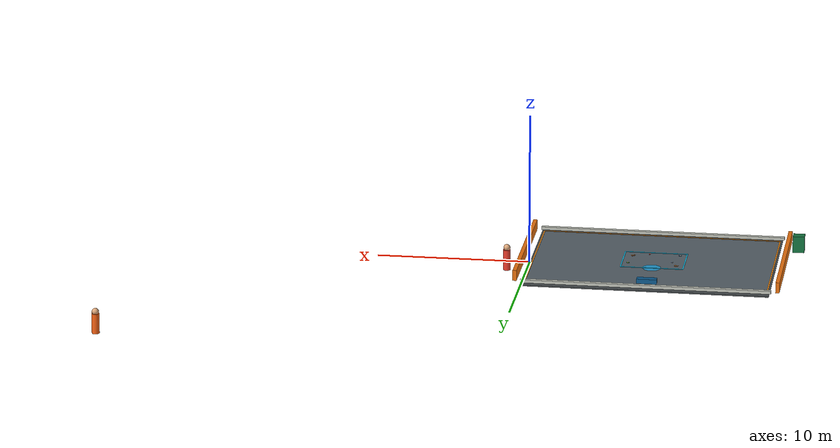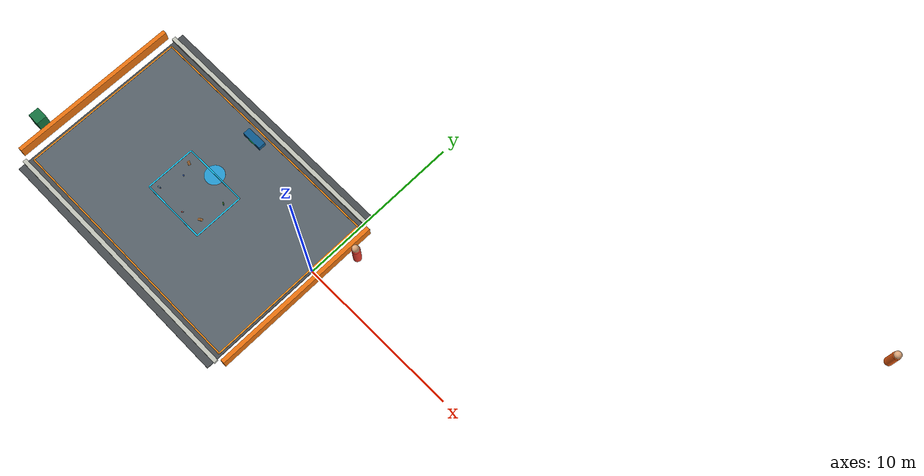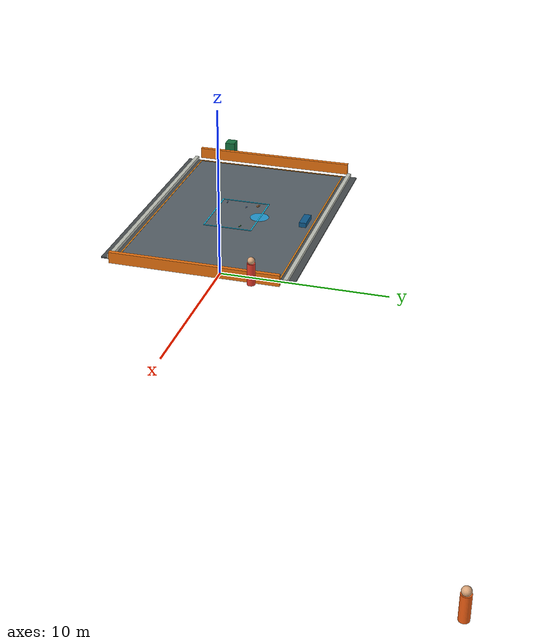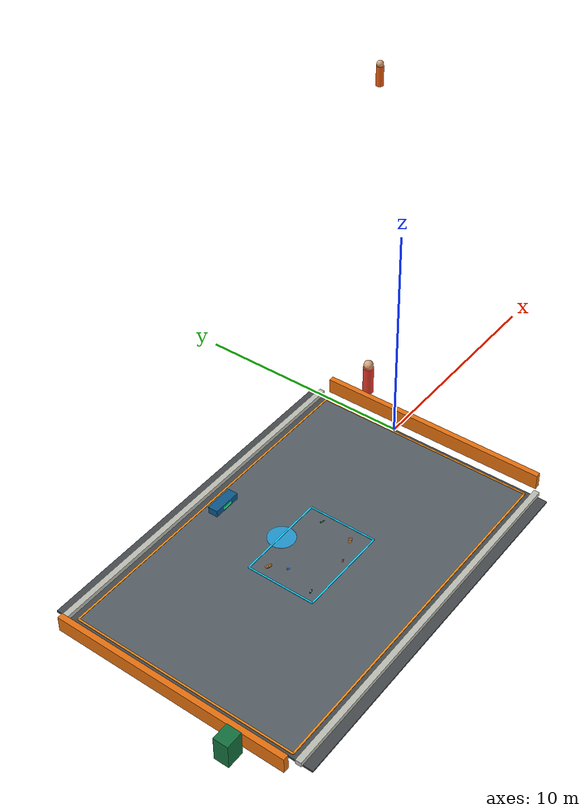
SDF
<sdf version="1.9">
 <world name="sanitation_competition_ackermann_demo">
  <plugin filename="gz-sim-physics-system" name="gz::sim::systems::Physics"/>
  <plugin filename="gz-sim-user-commands-system" name="gz::sim::systems::UserCommands"/>
  <plugin filename="gz-sim-scene-broadcaster-system" name="gz::sim::systems::SceneBroadcaster"/>
  <plugin filename="gz-sim-sensors-system" name="gz::sim::systems::Sensors">
   <render_engine>ogre2</render_engine>
  </plugin>
  <plugin filename="gz-sim-navsat-system" name="gz::sim::systems::NavSat"/>
  <spherical_coordinates>
   <surface_model>EARTH_WGS84</surface_model>
   <world_frame_orientation>ENU</world_frame_orientation>
   <latitude_deg>31.2304</latitude_deg>
   <longitude_deg>121.4737</longitude_deg>
   <elevation>0</elevation>
   <heading_deg>0</heading_deg>
  </spherical_coordinates>
  <gravity>0 0 -9.81</gravity>
  <physics name="developer_fast_2x" type="ignored">
   <max_step_size>0.005</max_step_size>
   <real_time_factor>2.0</real_time_factor>
  </physics>
  <scene>
   <ambient>0.68 0.70 0.72 1</ambient>
   <background>0.58 0.76 0.91 1</background>
   <shadows>true</shadows>
   <grid>false</grid>
  </scene>
  <light type="directional" name="sun">
   <pose>-4 -6 20 0 0 0</pose>
   <diffuse>0.98 0.94 0.84 1</diffuse>
   <direction>-0.35 0.25 -1</direction>
  </light>
  <model name="demo_arena_floor">
   <static>true</static>
   <pose>-8 -1.5 -0.04 0 0 0</pose>
   <link name="link">
    <collision name="collision"><geometry><box><size>16 12 0.08</size></box></geometry></collision>
    <visual name="visual">
     <geometry><box><size>16 12 0.08</size></box></geometry>
     <material><ambient>0.22 0.25 0.27 1</ambient><diffuse>0.28 0.30 0.31 1</diffuse></material>
    </visual>
   </link>
  </model>
  <model name="cleaning_lane_surface">
   <static>true</static>
   <pose>-8 -1.5 0.008 0 0 0</pose>
   <link name="link">
    <visual name="visual">
     <geometry><box><size>15.6 10.0 0.012</size></box></geometry>
     <material><ambient>0.34 0.38 0.41 1</ambient><diffuse>0.34 0.38 0.41 1</diffuse></material>
    </visual>
   </link>
  </model>
  <model name="cleaning_boundary_north">
   <static>true</static>
   <pose>-8 3.54 0.02 0 0 0</pose>
   <link name="link">
    <visual name="v">
     <geometry><box><size>15.7 0.08 0.02</size></box></geometry>
     <material><ambient>0.96 0.55 0.08 1</ambient><diffuse>0.96 0.55 0.08 1</diffuse></material>
    </visual>
   </link>
  </model>
  <model name="cleaning_boundary_south">
   <static>true</static>
   <pose>-8 -6.54 0.02 0 0 0</pose>
   <link name="link">
    <visual name="v">
     <geometry><box><size>15.7 0.08 0.02</size></box></geometry>
     <material><ambient>0.96 0.55 0.08 1</ambient><diffuse>0.96 0.55 0.08 1</diffuse></material>
    </visual>
   </link>
  </model>
  <model name="cleaning_boundary_west">
   <static>true</static>
   <pose>-15.84 -1.50 0.02 0 0 0</pose>
   <link name="link">
    <visual name="v">
     <geometry><box><size>0.08 10.1 0.02</size></box></geometry>
     <material><ambient>0.96 0.55 0.08 1</ambient><diffuse>0.96 0.55 0.08 1</diffuse></material>
    </visual>
   </link>
  </model>
  <model name="cleaning_boundary_east">
   <static>true</static>
   <pose>-0.16 -1.50 0.02 0 0 0</pose>
   <link name="link">
    <visual name="v">
     <geometry><box><size>0.08 10.1 0.02</size></box></geometry>
     <material><ambient>0.96 0.55 0.08 1</ambient><diffuse>0.96 0.55 0.08 1</diffuse></material>
    </visual>
   </link>
  </model>
  <model name="actual_cleaning_boundary_north">
   <static>true</static>
   <pose>-8 0.04 0.025 0 0 0</pose>
   <link name="link">
    <visual name="v">
     <geometry><box><size>4.1 0.07 0.025</size></box></geometry>
     <material><ambient>0.08 0.82 1 1</ambient><diffuse>0.08 0.82 1 1</diffuse></material>
    </visual>
   </link>
  </model>
  <model name="actual_cleaning_boundary_south">
   <static>true</static>
   <pose>-8 -3.04 0.025 0 0 0</pose>
   <link name="link">
    <visual name="v">
     <geometry><box><size>4.1 0.07 0.025</size></box></geometry>
     <material><ambient>0.08 0.82 1 1</ambient><diffuse>0.08 0.82 1 1</diffuse></material>
    </visual>
   </link>
  </model>
  <model name="actual_cleaning_boundary_west">
   <static>true</static>
   <pose>-10.04 -1.5 0.025 0 0 0</pose>
   <link name="link">
    <visual name="v">
     <geometry><box><size>0.07 3.1 0.025</size></box></geometry>
     <material><ambient>0.08 0.82 1 1</ambient><diffuse>0.08 0.82 1 1</diffuse></material>
    </visual>
   </link>
  </model>
  <model name="actual_cleaning_boundary_east">
   <static>true</static>
   <pose>-5.96 -1.5 0.025 0 0 0</pose>
   <link name="link">
    <visual name="v">
     <geometry><box><size>0.07 3.1 0.025</size></box></geometry>
     <material><ambient>0.08 0.82 1 1</ambient><diffuse>0.08 0.82 1 1</diffuse></material>
    </visual>
   </link>
  </model>
  <model name="home_dock">
   <static>true</static>
   <pose>-8 3.00 0.16 0 0 0</pose>
   <link name="link">
    <collision name="collision"><geometry><box><size>1.3 0.45 0.32</size></box></geometry></collision>
    <visual name="body">
     <geometry><box><size>1.3 0.45 0.32</size></box></geometry>
     <material><ambient>0.05 0.24 0.39 1</ambient><diffuse>0.05 0.35 0.55 1</diffuse></material>
    </visual>
    <visual name="charge">
     <pose>0 -0.235 0 0 0 0</pose>
     <geometry><box><size>0.5 0.02 0.15</size></box></geometry>
     <material><ambient>0.1 1 0.55 1</ambient><diffuse>0.1 1 0.55 1</diffuse></material>
    </visual>
   </link>
  </model>
  <model name="start_zone">
   <static>true</static>
   <pose>-8 0 0.018 0 0 0</pose>
   <link name="link">
    <visual name="v">
     <geometry><cylinder><radius>0.6</radius><length>0.015</length></cylinder></geometry>
     <material><ambient>0.12 0.72 1 0.75</ambient><diffuse>0.12 0.72 1 0.75</diffuse></material>
    </visual>
   </link>
  </model>
  <model name="curb_north">
   <static>true</static>
   <pose>-8 3.95 0.10 0 0 0</pose>
   <link name="link">
    <collision name="c"><geometry><box><size>16.2 0.25 0.20</size></box></geometry></collision>
    <visual name="v">
     <geometry><box><size>16.2 0.25 0.20</size></box></geometry>
     <material><ambient>0.75 0.76 0.72 1</ambient><diffuse>0.75 0.76 0.72 1</diffuse></material>
    </visual>
   </link>
  </model>
  <model name="curb_south">
   <static>true</static>
   <pose>-8 -6.95 0.10 0 0 0</pose>
   <link name="link">
    <collision name="c"><geometry><box><size>16.2 0.25 0.20</size></box></geometry></collision>
    <visual name="v">
     <geometry><box><size>16.2 0.25 0.20</size></box></geometry>
     <material><ambient>0.75 0.76 0.72 1</ambient><diffuse>0.75 0.76 0.72 1</diffuse></material>
    </visual>
   </link>
  </model>
  <model name="safety_barrier_west">
   <static>true</static>
   <pose>-16.5 -1.5 0.35 0 0 0</pose>
   <link name="link">
    <collision name="c"><geometry><box><size>0.25 10.5 0.7</size></box></geometry></collision>
    <visual name="v">
     <geometry><box><size>0.25 10.5 0.7</size></box></geometry>
     <material><ambient>0.92 0.45 0.06 1</ambient><diffuse>0.92 0.45 0.06 1</diffuse></material>
    </visual>
   </link>
  </model>
  <model name="safety_barrier_east">
   <static>true</static>
   <pose>0.5 -1.5 0.35 0 0 0</pose>
   <link name="link">
    <collision name="c"><geometry><box><size>0.25 10.5 0.7</size></box></geometry></collision>
    <visual name="v">
     <geometry><box><size>0.25 10.5 0.7</size></box></geometry>
     <material><ambient>0.92 0.45 0.06 1</ambient><diffuse>0.92 0.45 0.06 1</diffuse></material>
    </visual>
   </link>
  </model>
  <model name="competition_bin">
   <static>true</static>
   <pose>-17.2 -4.8 0.55 0 0 0</pose>
   <link name="link">
    <collision name="c"><geometry><box><size>0.75 0.65 1.1</size></box></geometry></collision>
    <visual name="v">
     <geometry><box><size>0.75 0.65 1.1</size></box></geometry>
     <material><ambient>0.08 0.45 0.25 1</ambient><diffuse>0.08 0.45 0.25 1</diffuse></material>
    </visual>
   </link>
  </model>
  <model name="pedestrian_dummy">
   <static>true</static>
   <pose>1.2 2.25 0 0 0 0</pose>
   <link name="link">
    <collision name="c">
     <pose>0 0 0.9 0 0 0</pose>
     <geometry><cylinder><radius>0.25</radius><length>1.8</length></cylinder></geometry>
    </collision>
    <visual name="body">
     <pose>0 0 0.9 0 0 0</pose>
     <geometry><cylinder><radius>0.24</radius><length>1.35</length></cylinder></geometry>
     <material><ambient>0.92 0.24 0.18 1</ambient><diffuse>0.92 0.24 0.18 1</diffuse></material>
    </visual>
    <visual name="head">
     <pose>0 0 1.72 0 0 0</pose>
     <geometry><sphere><radius>0.22</radius></sphere></geometry>
     <material><ambient>0.86 0.65 0.48 1</ambient><diffuse>0.86 0.65 0.48 1</diffuse></material>
    </visual>
   </link>
  </model>
  <model name="dynamic_pedestrian_box">
   <static>false</static>
   <pose>25 18 0 0 0 0</pose>
   <link name="link">
    <gravity>false</gravity>
    <kinematic>true</kinematic>
    <collision name="collision">
     <pose>0 0 0.85 0 0 0</pose>
     <geometry><cylinder><radius>0.25</radius><length>1.70</length></cylinder></geometry>
    </collision>
    <visual name="body">
     <pose>0 0 0.85 0 0 0</pose>
     <geometry><cylinder><radius>0.24</radius><length>1.30</length></cylinder></geometry>
     <material><ambient>0.96 0.38 0.08 1</ambient><diffuse>0.96 0.38 0.08 1</diffuse></material>
    </visual>
    <visual name="head">
     <pose>0 0 1.62 0 0 0</pose>
     <geometry><sphere><radius>0.22</radius></sphere></geometry>
     <material><ambient>0.86 0.65 0.48 1</ambient><diffuse>0.86 0.65 0.48 1</diffuse></material>
    </visual>
   </link>
  </model>
  <model name="target_bottle_demo">
   <static>true</static>
   <pose>-9.60 -2.65 0.035 0 1.57 0.2</pose>
   <link name="link">
    <visual name="body">
     <pose>0 0 -0.025 0 0 0</pose>
     <geometry><cylinder><radius>0.033</radius><length>0.145</length></cylinder></geometry>
     <material><ambient>0.05 0.52 0.86 0.72</ambient><diffuse>0.05 0.52 0.86 0.72</diffuse></material>
    </visual>
    <visual name="base_ring">
     <pose>0 0 -0.1005 0 0 0</pose>
     <geometry><cylinder><radius>0.034</radius><length>0.006</length></cylinder></geometry>
     <material><ambient>0.04 0.40 0.68 0.82</ambient><diffuse>0.04 0.40 0.68 0.82</diffuse></material>
    </visual>
    <visual name="label">
     <pose>0 0 -0.020 0 0 0</pose>
     <geometry><cylinder><radius>0.034</radius><length>0.045</length></cylinder></geometry>
     <material><ambient>0.92 0.92 0.85 0.95</ambient><diffuse>0.92 0.92 0.85 0.95</diffuse></material>
    </visual>
    <visual name="shoulder">
     <pose>0 0 0.056 0 0 0</pose>
     <geometry><cylinder><radius>0.027</radius><length>0.022</length></cylinder></geometry>
     <material><ambient>0.05 0.52 0.86 0.72</ambient><diffuse>0.05 0.52 0.86 0.72</diffuse></material>
    </visual>
    <visual name="neck">
     <pose>0 0 0.079 0 0 0</pose>
     <geometry><cylinder><radius>0.013</radius><length>0.025</length></cylinder></geometry>
     <material><ambient>0.05 0.52 0.86 0.72</ambient><diffuse>0.05 0.52 0.86 0.72</diffuse></material>
    </visual>
    <visual name="cap">
     <pose>0 0 0.0965 0 0 0</pose>
     <geometry><cylinder><radius>0.016</radius><length>0.012</length></cylinder></geometry>
     <material><ambient>0.90 0.20 0.15 1</ambient><diffuse>0.90 0.20 0.15 1</diffuse></material>
    </visual>
   </link>
  </model>
  <model name="target_can_demo">
   <static>true</static>
   <pose>-7.60 -2.70 0.034 0 1.57 0.4</pose>
   <link name="link">
    <visual name="body">
     <geometry><cylinder><radius>0.033</radius><length>0.103</length></cylinder></geometry>
     <material>
      <ambient>0.76 0.79 0.82 1</ambient>
      <diffuse>0.76 0.79 0.82 1</diffuse>
      <specular>0.60 0.60 0.60 1</specular>
     </material>
    </visual>
    <visual name="label_band">
     <geometry><cylinder><radius>0.034</radius><length>0.062</length></cylinder></geometry>
     <material><ambient>0.82 0.13 0.10 1</ambient><diffuse>0.88 0.16 0.11 1</diffuse></material>
    </visual>
    <visual name="bottom_rim">
     <pose>0 0 -0.0545 0 0 0</pose>
     <geometry><cylinder><radius>0.035</radius><length>0.006</length></cylinder></geometry>
     <material><ambient>0.55 0.57 0.60 1</ambient><diffuse>0.70 0.72 0.74 1</diffuse></material>
    </visual>
    <visual name="top_rim">
     <pose>0 0 0.0545 0 0 0</pose>
     <geometry><cylinder><radius>0.035</radius><length>0.006</length></cylinder></geometry>
     <material><ambient>0.55 0.57 0.60 1</ambient><diffuse>0.70 0.72 0.74 1</diffuse></material>
    </visual>
    <visual name="pull_tab">
     <pose>0.009 0 0.058 0 0 0</pose>
     <geometry><box><size>0.020 0.008 0.002</size></box></geometry>
     <material><ambient>0.20 0.21 0.22 1</ambient><diffuse>0.30 0.31 0.32 1</diffuse></material>
    </visual>
   </link>
  </model>
  <model name="target_cardboard_demo">
   <static>true</static>
   <pose>-6.55 -2.30 0.03 0 0 0.5</pose>
   <link name="link">
    <visual name="carton_body">
     <geometry><box><size>0.205 0.145 0.052</size></box></geometry>
     <material><ambient>0.58 0.36 0.16 1</ambient><diffuse>0.67 0.43 0.22 1</diffuse></material>
    </visual>
    <visual name="left_flap">
     <pose>-0.112 0 0.023 0 -0.18 0</pose>
     <geometry><box><size>0.055 0.135 0.005</size></box></geometry>
     <material><ambient>0.66 0.43 0.22 1</ambient><diffuse>0.72 0.48 0.25 1</diffuse></material>
    </visual>
    <visual name="right_flap">
     <pose>0.112 0 0.023 0 0.18 0</pose>
     <geometry><box><size>0.055 0.135 0.005</size></box></geometry>
     <material><ambient>0.66 0.43 0.22 1</ambient><diffuse>0.72 0.48 0.25 1</diffuse></material>
    </visual>
    <visual name="packing_tape">
     <pose>0 0 0.029 0 0 0</pose>
     <geometry><box><size>0.018 0.148 0.002</size></box></geometry>
     <material><ambient>0.86 0.72 0.42 0.9</ambient><diffuse>0.86 0.72 0.42 0.9</diffuse></material>
    </visual>
   </link>
  </model>
  <model name="target_bottle_demo_02">
   <static>true</static>
   <pose>-6.35 -0.80 0.035 0 1.57 -0.35</pose>
   <link name="link">
    <visual name="body">
     <pose>0 0 -0.025 0 0 0</pose>
     <geometry><cylinder><radius>0.033</radius><length>0.145</length></cylinder></geometry>
     <material><ambient>0.10 0.62 0.32 0.78</ambient><diffuse>0.10 0.62 0.32 0.78</diffuse></material>
    </visual>
    <visual name="base_ring">
     <pose>0 0 -0.1005 0 0 0</pose>
     <geometry><cylinder><radius>0.034</radius><length>0.006</length></cylinder></geometry>
     <material><ambient>0.06 0.44 0.22 0.9</ambient><diffuse>0.06 0.44 0.22 0.9</diffuse></material>
    </visual>
    <visual name="label">
     <pose>0 0 -0.020 0 0 0</pose>
     <geometry><cylinder><radius>0.034</radius><length>0.045</length></cylinder></geometry>
     <material><ambient>0.96 0.86 0.24 0.96</ambient><diffuse>0.96 0.86 0.24 0.96</diffuse></material>
    </visual>
    <visual name="shoulder">
     <pose>0 0 0.056 0 0 0</pose>
     <geometry><cylinder><radius>0.027</radius><length>0.022</length></cylinder></geometry>
     <material><ambient>0.10 0.62 0.32 0.78</ambient><diffuse>0.10 0.62 0.32 0.78</diffuse></material>
    </visual>
    <visual name="neck">
     <pose>0 0 0.079 0 0 0</pose>
     <geometry><cylinder><radius>0.013</radius><length>0.025</length></cylinder></geometry>
     <material><ambient>0.10 0.62 0.32 0.78</ambient><diffuse>0.10 0.62 0.32 0.78</diffuse></material>
    </visual>
    <visual name="cap">
     <pose>0 0 0.0965 0 0 0</pose>
     <geometry><cylinder><radius>0.016</radius><length>0.012</length></cylinder></geometry>
     <material><ambient>0.18 0.30 0.86 1</ambient><diffuse>0.18 0.30 0.86 1</diffuse></material>
    </visual>
   </link>
  </model>
  <model name="target_can_demo_02">
   <static>true</static>
   <pose>-9.20 -1.25 0.034 0 1.57 -0.55</pose>
   <link name="link">
    <visual name="body">
     <geometry><cylinder><radius>0.033</radius><length>0.103</length></cylinder></geometry>
     <material>
      <ambient>0.76 0.79 0.82 1</ambient>
      <diffuse>0.76 0.79 0.82 1</diffuse>
      <specular>0.60 0.60 0.60 1</specular>
     </material>
    </visual>
    <visual name="label_band">
     <geometry><cylinder><radius>0.034</radius><length>0.062</length></cylinder></geometry>
     <material><ambient>0.12 0.35 0.88 1</ambient><diffuse>0.14 0.40 0.94 1</diffuse></material>
    </visual>
    <visual name="bottom_rim">
     <pose>0 0 -0.0545 0 0 0</pose>
     <geometry><cylinder><radius>0.035</radius><length>0.006</length></cylinder></geometry>
     <material><ambient>0.55 0.57 0.60 1</ambient><diffuse>0.70 0.72 0.74 1</diffuse></material>
    </visual>
    <visual name="top_rim">
     <pose>0 0 0.0545 0 0 0</pose>
     <geometry><cylinder><radius>0.035</radius><length>0.006</length></cylinder></geometry>
     <material><ambient>0.55 0.57 0.60 1</ambient><diffuse>0.70 0.72 0.74 1</diffuse></material>
    </visual>
    <visual name="pull_tab">
     <pose>0.009 0 0.058 0 0 0</pose>
     <geometry><box><size>0.020 0.008 0.002</size></box></geometry>
     <material><ambient>0.20 0.21 0.22 1</ambient><diffuse>0.30 0.31 0.32 1</diffuse></material>
    </visual>
   </link>
  </model>
  <model name="target_cardboard_demo_02">
   <static>true</static>
   <pose>-9.55 -0.55 0.03 0 0 -0.35</pose>
   <link name="link">
    <visual name="carton_body">
     <geometry><box><size>0.205 0.145 0.052</size></box></geometry>
     <material><ambient>0.58 0.36 0.16 1</ambient><diffuse>0.67 0.43 0.22 1</diffuse></material>
    </visual>
    <visual name="left_flap">
     <pose>-0.112 0 0.023 0 -0.18 0</pose>
     <geometry><box><size>0.055 0.135 0.005</size></box></geometry>
     <material><ambient>0.66 0.43 0.22 1</ambient><diffuse>0.72 0.48 0.25 1</diffuse></material>
    </visual>
    <visual name="right_flap">
     <pose>0.112 0 0.023 0 0.18 0</pose>
     <geometry><box><size>0.055 0.135 0.005</size></box></geometry>
     <material><ambient>0.66 0.43 0.22 1</ambient><diffuse>0.72 0.48 0.25 1</diffuse></material>
    </visual>
    <visual name="packing_tape">
     <pose>0 0 0.029 0 0 0</pose>
     <geometry><box><size>0.018 0.148 0.002</size></box></geometry>
     <material><ambient>0.86 0.72 0.42 0.9</ambient><diffuse>0.86 0.72 0.42 0.9</diffuse></material>
    </visual>
   </link>
  </model>
 </world>
</sdf>
